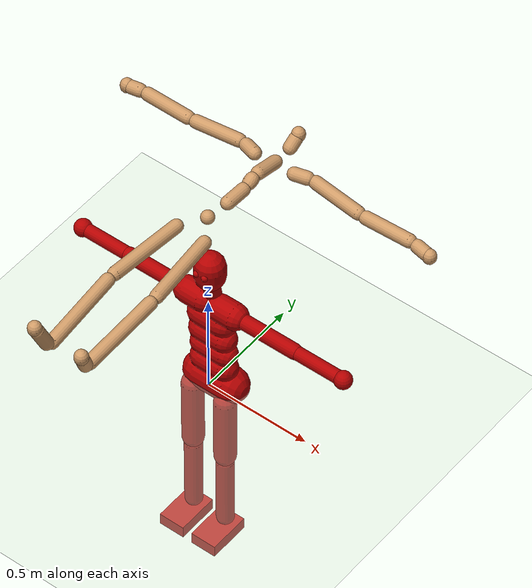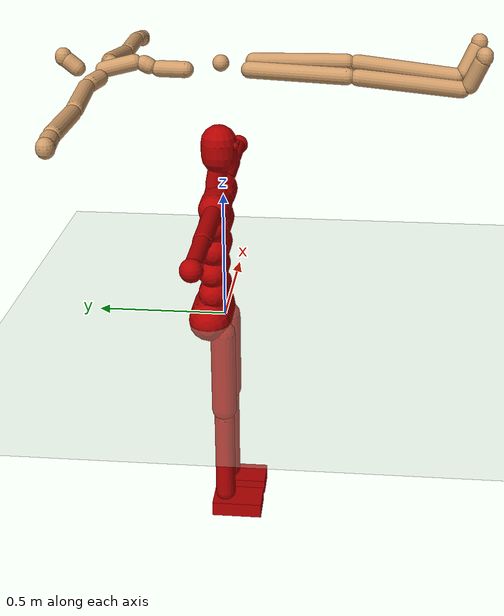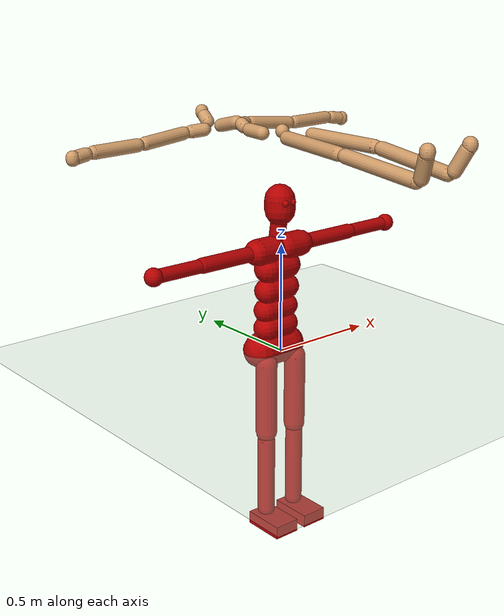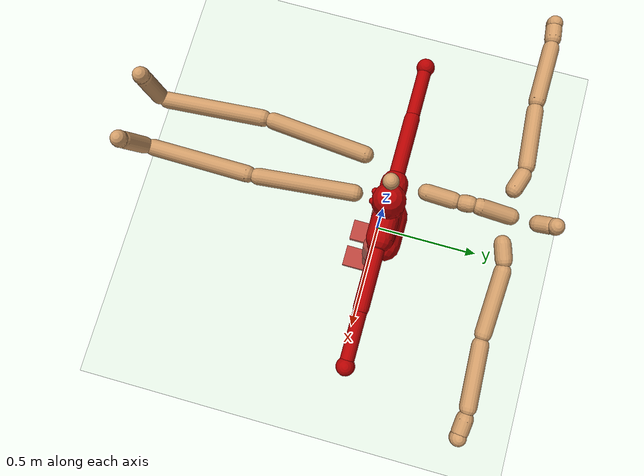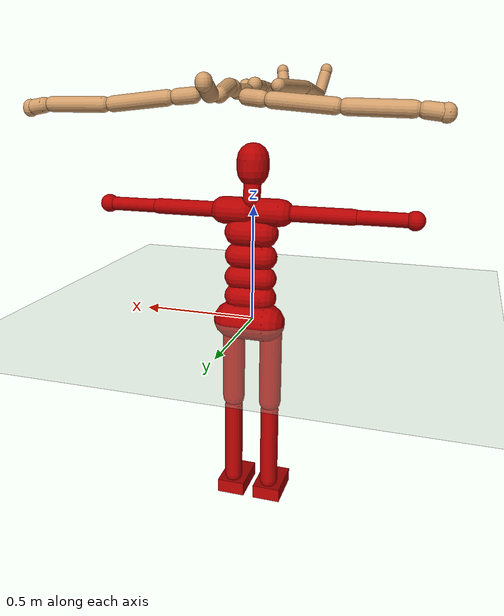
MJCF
<mujoco model="humanoid">
  <compiler angle="degree" inertiafromgeom="true" coordinate="global"/>
  <include file="./common/materials.xml"/>
  <visual>
    <headlight ambient=".4 .4 .4" diffuse=".8 .8 .8" specular="0.1 0.1 0.1"/>
    <map znear=".01"/>
    <quality shadowsize="2048"/>
  </visual>
  <default>
    <joint damping="0.0" armature="0.01" stiffness="0.0" limited="true"/>
    <geom conaffinity="7" condim="1" contype="7" margin="0.001" material="self" rgba="0.8 0.6 .4 1"/>
    <default class="smpl">
        <geom rgba="0.7 0.0 0.0 1"/>
    </default>
  </default>
  <statistic extent="3" center="0 0 1"/>
  <option timestep="0.00222222222"/>
  <asset>
    <texture type="skybox" file="./common/sky1.png" gridsize="3 4" gridlayout=".U..LFRB.D.." width="8192" height="8192"/>
    <texture builtin="flat" height="1278" mark="cross" markrgb="1 1 1" name="texgeom" random="0.01" rgb1=".8 .6 .4" rgb2=".8 .6 .4" type="cube" width="127"/>
  </asset>
  <worldbody>
    <light cutoff="100" diffuse="1 1 1" dir="-0 0 -1.3" directional="true" exponent="1" pos="0 0 1.3" specular=".1 .1 .1"/>
    <geom condim="3" friction="1. .1 .1" material="grid" name="floor" pos="0 0 0" rgba=".8 .9 .8 1" size="100 100 .2" type="plane"/>
    <body name="1_Hips"   pos="0.0000 0.0000 1.0000" user="-0.0002 -0.0243 0.9874">
      <joint name="1_Hips" pos="0.0000 0.0000 1.0000" limited="false" type="free" armature="0" damping="0" stiffness="0"/>
      <geom size="0.0300" type="sphere" pos="0.0000 0.0000 1.0000"/>
      <body name="1_LeftUpLeg" pos="0.0695 -0.0914 0.9932" user="0.1038 -0.4666 0.9887">
        <joint name="1_LeftUpLeg_z" type="hinge" pos="0.0695 -0.0914 0.9932" axis="0.0000 0.0000 1.0000" range="-180.0000 180.0000"/>
        <joint name="1_LeftUpLeg_x" type="hinge" pos="0.0695 -0.0914 0.9932" axis="1.0000 0.0000 0.0000" range="-180.0000 180.0000"/>
        <joint name="1_LeftUpLeg_y" type="hinge" pos="0.0695 -0.0914 0.9932" axis="0.0000 1.0000 0.0000" range="-180.0000 180.0000"/>
        <geom size="0.0300" type="capsule" fromto="0.0713 -0.1113 0.9929 0.1020 -0.4467 0.9889"/>
        <body name="1_LeftLeg" pos="0.1038 -0.4666 0.9887" user="0.0902 -0.8646 0.9450">
          <joint name="1_LeftLeg_z" type="hinge" pos="0.1038 -0.4666 0.9887" axis="0.0000 0.0000 1.0000" range="-180.0000 180.0000"/>
          <joint name="1_LeftLeg_x" type="hinge" pos="0.1038 -0.4666 0.9887" axis="1.0000 0.0000 0.0000" range="-180.0000 180.0000"/>
          <joint name="1_LeftLeg_y" type="hinge" pos="0.1038 -0.4666 0.9887" axis="0.0000 1.0000 0.0000" range="-180.0000 180.0000"/>
          <geom size="0.0300" type="capsule" fromto="0.1031 -0.4865 0.9865 0.0909 -0.8447 0.9472"/>
          <body name="1_LeftFoot" pos="0.0902 -0.8646 0.9450" user="0.1166 -0.9204 1.0643">
            <joint name="1_LeftFoot_z" type="hinge" pos="0.0902 -0.8646 0.9450" axis="0.0000 0.0000 1.0000" range="-180.0000 180.0000"/>
            <joint name="1_LeftFoot_x" type="hinge" pos="0.0902 -0.8646 0.9450" axis="1.0000 0.0000 0.0000" range="-180.0000 180.0000"/>
            <joint name="1_LeftFoot_y" type="hinge" pos="0.0902 -0.8646 0.9450" axis="0.0000 1.0000 0.0000" range="-180.0000 180.0000"/>
            <geom size="0.0300" type="capsule" fromto="0.0941 -0.8729 0.9628 0.1126 -0.9120 1.0465"/>
            <body name="1_LeftToe" pos="0.1166 -0.9204 1.0643" user="0.1166 -0.9204 1.0643">
              <joint name="1_LeftToe_z" type="hinge" pos="0.1166 -0.9204 1.0643" axis="0.0000 0.0000 1.0000" range="-180.0000 180.0000"/>
              <joint name="1_LeftToe_x" type="hinge" pos="0.1166 -0.9204 1.0643" axis="1.0000 0.0000 0.0000" range="-180.0000 180.0000"/>
              <joint name="1_LeftToe_y" type="hinge" pos="0.1166 -0.9204 1.0643" axis="0.0000 1.0000 0.0000" range="-180.0000 180.0000"/>
              <geom size="0.0300" type="capsule" fromto="0.1166 -0.9204 1.0683 0.1166 -0.9204 1.0603"/>
            </body>
          </body>
        </body>
      </body>
      <body name="1_RightUpLeg" pos="-0.0677 -0.0905 0.9957" user="-0.1060 -0.4731 0.9868">
        <joint name="1_RightUpLeg_z" type="hinge" pos="-0.0677 -0.0905 0.9957" axis="0.0000 0.0000 1.0000" range="-180.0000 180.0000"/>
        <joint name="1_RightUpLeg_x" type="hinge" pos="-0.0677 -0.0905 0.9957" axis="1.0000 0.0000 0.0000" range="-180.0000 180.0000"/>
        <joint name="1_RightUpLeg_y" type="hinge" pos="-0.0677 -0.0905 0.9957" axis="0.0000 1.0000 0.0000" range="-180.0000 180.0000"/>
        <geom size="0.0300" type="capsule" fromto="-0.0697 -0.1104 0.9952 -0.1040 -0.4532 0.9873"/>
        <body name="1_RightLeg" pos="-0.1060 -0.4731 0.9868" user="-0.0902 -0.8715 0.9445">
          <joint name="1_RightLeg_z" type="hinge" pos="-0.1060 -0.4731 0.9868" axis="0.0000 0.0000 1.0000" range="-180.0000 180.0000"/>
          <joint name="1_RightLeg_x" type="hinge" pos="-0.1060 -0.4731 0.9868" axis="1.0000 0.0000 0.0000" range="-180.0000 180.0000"/>
          <joint name="1_RightLeg_y" type="hinge" pos="-0.1060 -0.4731 0.9868" axis="0.0000 1.0000 0.0000" range="-180.0000 180.0000"/>
          <geom size="0.0300" type="capsule" fromto="-0.1052 -0.4930 0.9847 -0.0910 -0.8516 0.9466"/>
          <body name="1_RightFoot" pos="-0.0902 -0.8715 0.9445" user="-0.1156 -0.9196 1.0679">
            <joint name="1_RightFoot_z" type="hinge" pos="-0.0902 -0.8715 0.9445" axis="0.0000 0.0000 1.0000" range="-180.0000 180.0000"/>
            <joint name="1_RightFoot_x" type="hinge" pos="-0.0902 -0.8715 0.9445" axis="1.0000 0.0000 0.0000" range="-180.0000 180.0000"/>
            <joint name="1_RightFoot_y" type="hinge" pos="-0.0902 -0.8715 0.9445" axis="0.0000 1.0000 0.0000" range="-180.0000 180.0000"/>
            <geom size="0.0300" type="capsule" fromto="-0.0940 -0.8786 0.9628 -0.1118 -0.9125 1.0496"/>
            <body name="1_RightToe" pos="-0.1156 -0.9196 1.0679" user="-0.1156 -0.9196 1.0679">
              <joint name="1_RightToe_z" type="hinge" pos="-0.1156 -0.9196 1.0679" axis="0.0000 0.0000 1.0000" range="-180.0000 180.0000"/>
              <joint name="1_RightToe_x" type="hinge" pos="-0.1156 -0.9196 1.0679" axis="1.0000 0.0000 0.0000" range="-180.0000 180.0000"/>
              <joint name="1_RightToe_y" type="hinge" pos="-0.1156 -0.9196 1.0679" axis="0.0000 1.0000 0.0000" range="-180.0000 180.0000"/>
              <geom size="0.0300" type="capsule" fromto="-0.1156 -0.9196 1.0719 -0.1156 -0.9196 1.0639"/>
            </body>
          </body>
        </body>
      </body>
      <body name="1_Spine" pos="-0.0025 0.1090 0.9733" user="0.0030 0.2441 0.9744">
        <joint name="1_Spine_z" type="hinge" pos="-0.0025 0.1090 0.9733" axis="0.0000 0.0000 1.0000" range="-180.0000 180.0000"/>
        <joint name="1_Spine_x" type="hinge" pos="-0.0025 0.1090 0.9733" axis="1.0000 0.0000 0.0000" range="-180.0000 180.0000"/>
        <joint name="1_Spine_y" type="hinge" pos="-0.0025 0.1090 0.9733" axis="0.0000 1.0000 0.0000" range="-180.0000 180.0000"/>
        <geom size="0.0300" type="capsule" fromto="-0.0017 0.1289 0.9735 0.0021 0.2242 0.9742"/>
        <body name="1_Spine1" pos="0.0030 0.2441 0.9744" user="0.0044 0.2971 0.9998">
          <joint name="1_Spine1_z" type="hinge" pos="0.0030 0.2441 0.9744" axis="0.0000 0.0000 1.0000" range="-180.0000 180.0000"/>
          <joint name="1_Spine1_x" type="hinge" pos="0.0030 0.2441 0.9744" axis="1.0000 0.0000 0.0000" range="-180.0000 180.0000"/>
          <joint name="1_Spine1_y" type="hinge" pos="0.0030 0.2441 0.9744" axis="0.0000 1.0000 0.0000" range="-180.0000 180.0000"/>
          <geom size="0.0300" type="capsule" fromto="0.0035 0.2622 0.9831 0.0039 0.2790 0.9912"/>
          <body name="1_Spine2" pos="0.0044 0.2971 0.9998" user="0.0025 0.4486 0.9613">
            <joint name="1_Spine2_z" type="hinge" pos="0.0044 0.2971 0.9998" axis="0.0000 0.0000 1.0000" range="-180.0000 180.0000"/>
            <joint name="1_Spine2_x" type="hinge" pos="0.0044 0.2971 0.9998" axis="1.0000 0.0000 0.0000" range="-180.0000 180.0000"/>
            <joint name="1_Spine2_y" type="hinge" pos="0.0044 0.2971 0.9998" axis="0.0000 1.0000 0.0000" range="-180.0000 180.0000"/>
            <geom size="0.0300" type="capsule" fromto="0.0042 0.3164 0.9949 0.0028 0.4292 0.9662"/>
            <body name="1_Neck" pos="0.0016 0.5109 0.9570" user="0.0068 0.5759 1.0083">
              <joint name="1_Neck_z" type="hinge" pos="0.0016 0.5109 0.9570" axis="0.0000 0.0000 1.0000" range="-180.0000 180.0000"/>
              <joint name="1_Neck_x" type="hinge" pos="0.0016 0.5109 0.9570" axis="1.0000 0.0000 0.0000" range="-180.0000 180.0000"/>
              <joint name="1_Neck_y" type="hinge" pos="0.0016 0.5109 0.9570" axis="0.0000 1.0000 0.0000" range="-180.0000 180.0000"/>
              <geom size="0.0300" type="capsule" fromto="0.0029 0.5266 0.9693 0.0055 0.5602 0.9959"/>
              <body name="1_Mouth" pos="0.0068 0.5759 1.0083" user="0.0068 0.5759 1.0083">
                <joint name="1_Mouth_z" type="hinge" pos="0.0068 0.5759 1.0083" axis="0.0000 0.0000 1.0000" range="-180.0000 180.0000"/>
                <joint name="1_Mouth_x" type="hinge" pos="0.0068 0.5759 1.0083" axis="1.0000 0.0000 0.0000" range="-180.0000 180.0000"/>
                <joint name="1_Mouth_y" type="hinge" pos="0.0068 0.5759 1.0083" axis="0.0000 1.0000 0.0000" range="-180.0000 180.0000"/>
                <geom size="0.0300" type="capsule" fromto="0.0068 0.5759 1.0123 0.0068 0.5759 1.0043"/>
              </body>
            </body>
            <body name="1_LeftChest" pos="0.0833 0.4188 0.9657" user="0.1742 0.4493 0.9569">
              <joint name="1_LeftChest_z" type="hinge" pos="0.0833 0.4188 0.9657" axis="0.0000 0.0000 1.0000" range="-180.0000 180.0000"/>
              <joint name="1_LeftChest_x" type="hinge" pos="0.0833 0.4188 0.9657" axis="1.0000 0.0000 0.0000" range="-180.0000 180.0000"/>
              <joint name="1_LeftChest_y" type="hinge" pos="0.0833 0.4188 0.9657" axis="0.0000 1.0000 0.0000" range="-180.0000 180.0000"/>
              <geom size="0.0300" type="capsule" fromto="0.1021 0.4251 0.9639 0.1553 0.4430 0.9587"/>
              <body name="1_LeftShoulder" pos="0.1742 0.4493 0.9569" user="0.4338 0.4365 0.9294">
                <joint name="1_LeftShoulder_z" type="hinge" pos="0.1742 0.4493 0.9569" axis="0.0000 0.0000 1.0000" range="-180.0000 180.0000"/>
                <joint name="1_LeftShoulder_x" type="hinge" pos="0.1742 0.4493 0.9569" axis="1.0000 0.0000 0.0000" range="-180.0000 180.0000"/>
                <joint name="1_LeftShoulder_y" type="hinge" pos="0.1742 0.4493 0.9569" axis="0.0000 1.0000 0.0000" range="-180.0000 180.0000"/>
                <geom size="0.0300" type="capsule" fromto="0.1941 0.4483 0.9548 0.4140 0.4375 0.9315"/>
                <body name="1_LeftArm" pos="0.4338 0.4365 0.9294" user="0.6831 0.4455 0.9282">
                  <joint name="1_LeftArm_z" type="hinge" pos="0.4338 0.4365 0.9294" axis="0.0000 0.0000 1.0000" range="-180.0000 180.0000"/>
                  <joint name="1_LeftArm_x" type="hinge" pos="0.4338 0.4365 0.9294" axis="1.0000 0.0000 0.0000" range="-180.0000 180.0000"/>
                  <joint name="1_LeftArm_y" type="hinge" pos="0.4338 0.4365 0.9294" axis="0.0000 1.0000 0.0000" range="-180.0000 180.0000"/>
                  <geom size="0.0300" type="capsule" fromto="0.4538 0.4372 0.9293 0.6631 0.4448 0.9283"/>
                  <body name="1_LeftWrist" pos="0.6831 0.4455 0.9282" user="0.7671 0.4373 0.9133">
                    <joint name="1_LeftWrist_z" type="hinge" pos="0.6831 0.4455 0.9282" axis="0.0000 0.0000 1.0000" range="-180.0000 180.0000"/>
                    <joint name="1_LeftWrist_x" type="hinge" pos="0.6831 0.4455 0.9282" axis="1.0000 0.0000 0.0000" range="-180.0000 180.0000"/>
                    <joint name="1_LeftWrist_y" type="hinge" pos="0.6831 0.4455 0.9282" axis="0.0000 1.0000 0.0000" range="-180.0000 180.0000"/>
                    <geom size="0.0300" type="capsule" fromto="0.7027 0.4436 0.9247 0.7475 0.4392 0.9168"/>
                    <body name="1_LeftHand" pos="0.7671 0.4373 0.9133" user="0.7671 0.4373 0.9133">
                      <joint name="1_LeftHand_z" type="hinge" pos="0.7671 0.4373 0.9133" axis="0.0000 0.0000 1.0000" range="-180.0000 180.0000"/>
                      <joint name="1_LeftHand_x" type="hinge" pos="0.7671 0.4373 0.9133" axis="1.0000 0.0000 0.0000" range="-180.0000 180.0000"/>
                      <joint name="1_LeftHand_y" type="hinge" pos="0.7671 0.4373 0.9133" axis="0.0000 1.0000 0.0000" range="-180.0000 180.0000"/>
                      <geom size="0.0300" type="capsule" fromto="0.7671 0.4373 0.9173 0.7671 0.4373 0.9093"/>
                    </body>
                  </body>
                </body>
              </body>
            </body>
            <body name="1_RightChest" pos="-0.0773 0.4159 0.9612" user="-0.1734 0.4484 0.9521">
              <joint name="1_RightChest_z" type="hinge" pos="-0.0773 0.4159 0.9612" axis="0.0000 0.0000 1.0000" range="-180.0000 180.0000"/>
              <joint name="1_RightChest_x" type="hinge" pos="-0.0773 0.4159 0.9612" axis="1.0000 0.0000 0.0000" range="-180.0000 180.0000"/>
              <joint name="1_RightChest_y" type="hinge" pos="-0.0773 0.4159 0.9612" axis="0.0000 1.0000 0.0000" range="-180.0000 180.0000"/>
              <geom size="0.0300" type="capsule" fromto="-0.0962 0.4223 0.9594 -0.1545 0.4421 0.9539"/>
              <body name="1_RightShoulder" pos="-0.1734 0.4484 0.9521" user="-0.4271 0.4351 0.9307">
                <joint name="1_RightShoulder_z" type="hinge" pos="-0.1734 0.4484 0.9521" axis="0.0000 0.0000 1.0000" range="-180.0000 180.0000"/>
                <joint name="1_RightShoulder_x" type="hinge" pos="-0.1734 0.4484 0.9521" axis="1.0000 0.0000 0.0000" range="-180.0000 180.0000"/>
                <joint name="1_RightShoulder_y" type="hinge" pos="-0.1734 0.4484 0.9521" axis="0.0000 1.0000 0.0000" range="-180.0000 180.0000"/>
                <geom size="0.0300" type="capsule" fromto="-0.1933 0.4474 0.9504 -0.4072 0.4362 0.9323"/>
                <body name="1_RightArm" pos="-0.4271 0.4351 0.9307" user="-0.6824 0.4429 0.9251">
                  <joint name="1_RightArm_z" type="hinge" pos="-0.4271 0.4351 0.9307" axis="0.0000 0.0000 1.0000" range="-180.0000 180.0000"/>
                  <joint name="1_RightArm_x" type="hinge" pos="-0.4271 0.4351 0.9307" axis="1.0000 0.0000 0.0000" range="-180.0000 180.0000"/>
                  <joint name="1_RightArm_y" type="hinge" pos="-0.4271 0.4351 0.9307" axis="0.0000 1.0000 0.0000" range="-180.0000 180.0000"/>
                  <geom size="0.0300" type="capsule" fromto="-0.4471 0.4357 0.9302 -0.6624 0.4423 0.9255"/>
                  <body name="1_RightWrist" pos="-0.6824 0.4429 0.9251" user="-0.7670 0.4368 0.9148">
                    <joint name="1_RightWrist_z" type="hinge" pos="-0.6824 0.4429 0.9251" axis="0.0000 0.0000 1.0000" range="-180.0000 180.0000"/>
                    <joint name="1_RightWrist_x" type="hinge" pos="-0.6824 0.4429 0.9251" axis="1.0000 0.0000 0.0000" range="-180.0000 180.0000"/>
                    <joint name="1_RightWrist_y" type="hinge" pos="-0.6824 0.4429 0.9251" axis="0.0000 1.0000 0.0000" range="-180.0000 180.0000"/>
                    <geom size="0.0300" type="capsule" fromto="-0.7022 0.4415 0.9227 -0.7472 0.4382 0.9172"/>
                    <body name="1_RightHand" pos="-0.7670 0.4368 0.9148" user="-0.7670 0.4368 0.9148">
                      <joint name="1_RightHand_z" type="hinge" pos="-0.7670 0.4368 0.9148" axis="0.0000 0.0000 1.0000" range="-180.0000 180.0000"/>
                      <joint name="1_RightHand_x" type="hinge" pos="-0.7670 0.4368 0.9148" axis="1.0000 0.0000 0.0000" range="-180.0000 180.0000"/>
                      <joint name="1_RightHand_y" type="hinge" pos="-0.7670 0.4368 0.9148" axis="0.0000 1.0000 0.0000" range="-180.0000 180.0000"/>
                      <geom size="0.0300" type="capsule" fromto="-0.7670 0.4368 0.9188 -0.7670 0.4368 0.9108"/>
                    </body>
                  </body>
                </body>
              </body>
            </body>
          </body>
        </body>
      </body>
    </body>

      <body childclass="smpl" name="Hips" user="0.0000 0.0146 0.0054" pos="0.0000 0.0146 0.0054">
      <geom fromto="-0.0750 0.0506 0.0054 0.0750 0.0506 0.0054" size="0.0820" type="capsule"/>
      <joint armature="0" damping="0" limited="false" name="Hips" pos="0.0000 0.0000 0.0000" stiffness="0" type="free"/>
      <body name="Spine" user="0.0000 0.0591 0.1523" pos="0.0000 0.0146 0.0054">
        <geom fromto="-0.0550 0.0369 0.1109 0.0550 0.0369 0.1109" size="0.0590" type="capsule"/>
        <joint axis="1.0000 0.0000 0.0000" name="Spine_x" pos="0.0000 0.0439 0.0658" range="-30.0000 45.0000" type="hinge"/>
        <joint axis="0.0000 1.0000 0.0000" name="Spine_y" pos="0.0000 0.0439 0.0658" range="-30.0000 30.0000" type="hinge"/>
        <joint axis="0.0000 0.0000 1.0000" name="Spine_z" pos="0.0000 0.0439 0.0658" range="-30.0000 30.0000" type="hinge"/>
        <body name="Spine1" user="0.0000 0.0668 0.2397" pos="0.0000 0.0591 0.1523">
          <geom fromto="-0.0600 0.0370 0.1960 0.0600 0.0370 0.1960" size="0.0540" type="capsule"/>
          <joint axis="1.0000 0.0000 0.0000" name="Spine1_x" pos="0.0000 0.0591 0.1523" range="-30.0000 45.0000" type="hinge"/>
          <joint axis="0.0000 1.0000 0.0000" name="Spine1_y" pos="0.0000 0.0591 0.1523" range="-30.0000 30.0000" type="hinge"/>
          <joint axis="0.0000 0.0000 1.0000" name="Spine1_z" pos="0.0000 0.0591 0.1523" range="-30.0000 30.0000" type="hinge"/>
          <body name="Spine2" user="0.0000 0.0668 0.3275" pos="0.0000 0.0668 0.2397">
            <geom fromto="-0.0575 0.0308 0.2896 0.0575 0.0308 0.2896" size="0.0570" type="capsule"/>
            <joint axis="1.0000 0.0000 0.0000" name="Spine2_x" pos="0.0000 0.0668 0.2397" range="-30.0000 45.0000" type="hinge"/>
            <joint axis="0.0000 1.0000 0.0000" name="Spine2_y" pos="0.0000 0.0668 0.2397" range="-30.0000 30.0000" type="hinge"/>
            <joint axis="0.0000 0.0000 1.0000" name="Spine2_z" pos="0.0000 0.0668 0.2397" range="-30.0000 30.0000" type="hinge"/>
            <body name="Spine3" user="0.0000 0.0240 0.5074" pos="0.0000 0.0668 0.3275">
              <geom fromto="-0.0550 0.0274 0.3914 0.0550 0.0274 0.3914" size="0.0620" type="capsule"/>
              <joint axis="1.0000 0.0000 0.0000" name="Spine3_x" pos="0.0000 0.0668 0.3275" range="-30.0000 45.0000" type="hinge"/>
              <joint axis="0.0000 1.0000 0.0000" name="Spine3_y" pos="0.0000 0.0668 0.3275" range="-30.0000 30.0000" type="hinge"/>
              <joint axis="0.0000 0.0000 1.0000" name="Spine3_z" pos="0.0000 0.0668 0.3275" range="-30.0000 30.0000" type="hinge"/>
              <body name="Neck" user="0.0000 0.0129 0.6768" pos="0.0000 0.0240 0.5074">
                <joint axis="1.0000 0.0000 0.0000" name="Neck_x" pos="0.0000 0.0339 0.5579" range="-30.0000 45.0000" type="hinge"/>
                <joint axis="0.0000 1.0000 0.0000" name="Neck_y" pos="0.0000 0.0339 0.5579" range="-30.0000 30.0000" type="hinge"/>
                <joint axis="0.0000 0.0000 1.0000" name="Neck_z" pos="0.0000 0.0339 0.5579" range="-30.0000 30.0000" type="hinge"/>
                <geom fromto="0.0000 0.0304 0.5336 0.0000 0.0164 0.6131" size="0.0370" type="capsule"/>
                <body name="Head" user="0.0000 0.0129 0.8188" pos="0.0000 0.0129 0.6768">
                  <geom pos="0.0200 -0.0471 0.6968" size="0.0150" type="sphere"/>
                  <geom pos="-0.0200 -0.0471 0.6968" size="0.0150" type="sphere"/>
                  <geom fromto="0.0000 0.0129 0.6543 0.0000 0.0129 0.7013" size="0.0680" type="capsule"/>
                  <joint axis="1.0000 0.0000 0.0000" name="Head_x" pos="0.0000 0.0129 0.6768" range="-30.0000 45.0000" type="hinge"/>
                  <joint axis="0.0000 1.0000 0.0000" name="Head_y" pos="0.0000 0.0129 0.6768" range="-30.0000 30.0000" type="hinge"/>
                  <joint axis="0.0000 0.0000 1.0000" name="Head_z" pos="0.0000 0.0129 0.6768" range="-30.0000 30.0000" type="hinge"/>
                </body>
              </body>
              <body name="RightShoulder" user="-0.1708 0.0191 0.4821" pos="0.0000 0.0240 0.5074">
                <joint axis="1.0000 0.0000 0.0000" name="RightShoulder_x" pos="-0.0286 0.0191 0.4821" range="-20.0000 20.0000" type="hinge"/>
                <joint axis="0.0000 1.0000 0.0000" name="RightShoulder_y" pos="-0.0286 0.0191 0.4821" range="-20.0000 20.0000" type="hinge"/>
                <joint axis="0.0000 0.0000 1.0000" name="RightShoulder_z" pos="-0.0286 0.0191 0.4821" range="-20.0000 20.0000" type="hinge"/>
                <geom fromto="-0.0406 0.0191 0.4821 -0.1228 0.0191 0.4821" size="0.0590" type="capsule"/>
                <body name="RightArm" user="-0.4103 0.0191 0.4821" pos="-0.1708 0.0191 0.4821">
                  <joint axis="1.0000 0.0000 0.0000" name="RightArm_x" pos="-0.1708 0.0191 0.4821" range="-90.0000 90.0000" type="hinge"/>
                  <joint axis="0.0000 1.0000 0.0000" name="RightArm_y" pos="-0.1708 0.0191 0.4821" range="-90.0000 90.0000" type="hinge"/>
                  <joint axis="0.0000 0.0000 1.0000" name="RightArm_z" pos="-0.1708 0.0191 0.4821" range="-60.0000 90.0000" type="hinge"/>
                  <geom fromto="-0.1558 0.0191 0.4821 -0.4253 0.0191 0.4821" size="0.0340" type="capsule"/>
                  <body name="RightForeArm" user="-0.6643 0.0191 0.4821" pos="-0.4103 0.0191 0.4821">
                    <joint axis="0.0000 0.0000 1.0000" name="RightForeArm_z" pos="-0.4103 0.0191 0.4821" range="-10.0000 170.0000" type="hinge"/>
                    <geom fromto="-0.4303 0.0191 0.4821 -0.6443 0.0191 0.4821" size="0.0300" type="capsule"/>
                    <body name="RightHand" user="-0.7282 0.0191 0.4821" pos="-0.6643 0.0191 0.4821">
                      <geom pos="-0.6683 0.0191 0.4821" size="0.0400" type="sphere"/>
                      <joint axis="1.0000 0.0000 0.0000" name="RightHand_x" pos="-0.6643 0.0191 0.4821" range="-90.0000 90.0000" type="hinge"/>
                      <joint axis="0.0000 1.0000 0.0000" name="RightHand_y" pos="-0.6643 0.0191 0.4821" range="-90.0000 90.0000" type="hinge"/>
                      <joint axis="0.0000 0.0000 1.0000" name="RightHand_z" pos="-0.6643 0.0191 0.4821" range="-90.0000 90.0000" type="hinge"/>
                    </body>
                  </body>
                </body>
              </body>
              <body name="LeftShoulder" user="0.1708 0.0191 0.4821" pos="-0.0000 0.0240 0.5074">
                <joint axis="1.0000 0.0000 0.0000" name="LeftShoulder_x" pos="0.0286 0.0191 0.4821" range="-20.0000 20.0000" type="hinge"/>
                <joint axis="0.0000 1.0000 0.0000" name="LeftShoulder_y" pos="0.0286 0.0191 0.4821" range="-20.0000 20.0000" type="hinge"/>
                <joint axis="0.0000 0.0000 1.0000" name="LeftShoulder_z" pos="0.0286 0.0191 0.4821" range="-20.0000 20.0000" type="hinge"/>
                <geom fromto="0.0406 0.0191 0.4821 0.1228 0.0191 0.4821" size="0.0590" type="capsule"/>
                <body name="LeftArm" user="0.4103 0.0191 0.4821" pos="0.1708 0.0191 0.4821">
                  <joint axis="1.0000 0.0000 0.0000" name="LeftArm_x" pos="0.1708 0.0191 0.4821" range="-90.0000 90.0000" type="hinge"/>
                  <joint axis="0.0000 1.0000 0.0000" name="LeftArm_y" pos="0.1708 0.0191 0.4821" range="-90.0000 90.0000" type="hinge"/>
                  <joint axis="0.0000 0.0000 1.0000" name="LeftArm_z" pos="0.1708 0.0191 0.4821" range="-90.0000 60.0000" type="hinge"/>
                  <geom fromto="0.1558 0.0191 0.4821 0.4253 0.0191 0.4821" size="0.0340" type="capsule"/>
                  <body name="LeftForeArm" user="0.6643 0.0191 0.4821" pos="0.4103 0.0191 0.4821">
                    <joint axis="0.0000 0.0000 1.0000" name="LeftForeArm_z" pos="0.4103 0.0191 0.4821" range="-170.0000 10.0000" type="hinge"/>
                    <geom fromto="0.4303 0.0191 0.4821 0.6443 0.0191 0.4821" size="0.0300" type="capsule"/>
                    <body name="LeftHand" user="0.7282 0.0191 0.4821" pos="0.6643 0.0191 0.4821">
                      <geom pos="0.6683 0.0191 0.4821" size="0.0400" type="sphere"/>
                      <joint axis="1.0000 0.0000 0.0000" name="LeftHand_x" pos="0.6643 0.0191 0.4821" range="-90.0000 90.0000" type="hinge"/>
                      <joint axis="0.0000 1.0000 0.0000" name="LeftHand_y" pos="0.6643 0.0191 0.4821" range="-90.0000 90.0000" type="hinge"/>
                      <joint axis="0.0000 0.0000 1.0000" name="LeftHand_z" pos="0.6643 0.0191 0.4821" range="-90.0000 90.0000" type="hinge"/>
                    </body>
                  </body>
                </body>
              </body>
            </body>
          </body>
        </body>
      </body>
      <body name="RightUpLeg" user="-0.0849 0.0000 -0.4027" pos="0.0000 0.0146 0.0054">
        <joint axis="1.0000 0.0000 0.0000" name="RightUpLeg_x" pos="-0.0849 0.0000 -0.0248" range="-170.0000 20.0000" type="hinge"/>
        <joint axis="0.0000 1.0000 0.0000" name="RightUpLeg_y" pos="-0.0849 0.0000 -0.0248" range="-40.0000 90.0000" type="hinge"/>
        <joint axis="0.0000 0.0000 1.0000" name="RightUpLeg_z" pos="-0.0849 0.0000 -0.0248" range="-70.0000 70.0000" type="hinge"/>
        <geom fromto="-0.0849 0.0000 -0.0448 -0.0849 0.0000 -0.3827" size="0.0490" type="capsule"/>
        <body name="RightLeg" user="-0.0849 0.0000 -0.7988" pos="-0.0849 0.0000 -0.4027">
          <joint axis="1.0000 0.0000 0.0000" name="RightLeg_x" pos="-0.0849 0.0000 -0.4027" range="0.0000 170.0000" type="hinge"/>
          <geom contype="1" conaffinity="1" fromto="-0.0849 0.0000 -0.4227 -0.0849 0.0000 -0.7788" size="0.0400" type="capsule"/>
          <body name="RightFoot" user="-0.0849 -0.1308 -0.8464" pos="-0.0849 0.0000 -0.7988">
            <geom contype="1" conaffinity="1" pos="-0.0849 -0.0514 -0.8306" size="0.0620 0.1000 0.0300" quat="1.0000 -0.0000 -0.0000 -0.0000" type="box"/>
            <joint axis="1.0000 0.0000 0.0000" name="RightFoot_x" pos="-0.0849 0.0000 -0.7988" range="-90.0000 90.0000" type="hinge"/>
            <joint axis="0.0000 1.0000 0.0000" name="RightFoot_y" pos="-0.0849 0.0000 -0.7988" range="-60.0000 60.0000" type="hinge"/>
            <joint axis="0.0000 0.0000 1.0000" name="RightFoot_z" pos="-0.0849 0.0000 -0.7988" range="-90.0000 90.0000" type="hinge"/>
          </body>
        </body>
      </body>
      <body name="LeftUpLeg" user="0.0849 0.0000 -0.4027" pos="-0.0000 0.0146 0.0054">
        <joint axis="1.0000 0.0000 0.0000" name="LeftUpLeg_x" pos="0.0849 0.0000 -0.0248" range="-170.0000 20.0000" type="hinge"/>
        <joint axis="0.0000 1.0000 0.0000" name="LeftUpLeg_y" pos="0.0849 0.0000 -0.0248" range="-90.0000 40.0000" type="hinge"/>
        <joint axis="0.0000 0.0000 1.0000" name="LeftUpLeg_z" pos="0.0849 0.0000 -0.0248" range="-70.0000 70.0000" type="hinge"/>
        <geom fromto="0.0849 0.0000 -0.0448 0.0849 0.0000 -0.3827" size="0.0490" type="capsule"/>
        <body name="LeftLeg" user="0.0849 0.0000 -0.7988" pos="0.0849 0.0000 -0.4027">
          <joint axis="1.0000 0.0000 0.0000" name="LeftLeg_x" pos="0.0849 0.0000 -0.4027" range="0.0000 170.0000" type="hinge"/>
          <geom contype="2" conaffinity="2" fromto="0.0849 0.0000 -0.4227 0.0849 0.0000 -0.7788" size="0.0400" type="capsule"/>
          <body name="LeftFoot" user="0.0849 -0.1308 -0.8464" pos="0.0849 0.0000 -0.7988">
            <geom contype="2" conaffinity="2" pos="0.0849 -0.0514 -0.8306" size="0.0620 0.1000 0.0300" quat="1.0000 -0.0000 -0.0000 0.0000" type="box"/>
            <joint axis="1.0000 0.0000 0.0000" name="LeftFoot_x" pos="0.0849 0.0000 -0.7988" range="-90.0000 90.0000" type="hinge"/>
            <joint axis="0.0000 1.0000 0.0000" name="LeftFoot_y" pos="0.0849 0.0000 -0.7988" range="-60.0000 60.0000" type="hinge"/>
            <joint axis="0.0000 0.0000 1.0000" name="LeftFoot_z" pos="0.0849 0.0000 -0.7988" range="-90.0000 90.0000" type="hinge"/>
          </body>
        </body>
      </body>
    </body>

  </worldbody>
  <actuator>
    <motor name="1_LeftUpLeg_z" joint="1_LeftUpLeg_z" gear="1"/>
    <motor name="1_LeftUpLeg_x" joint="1_LeftUpLeg_x" gear="1"/>
    <motor name="1_LeftUpLeg_y" joint="1_LeftUpLeg_y" gear="1"/>
    <motor name="1_LeftLeg_z" joint="1_LeftLeg_z" gear="1"/>
    <motor name="1_LeftLeg_x" joint="1_LeftLeg_x" gear="1"/>
    <motor name="1_LeftLeg_y" joint="1_LeftLeg_y" gear="1"/>
    <motor name="1_LeftFoot_z" joint="1_LeftFoot_z" gear="1"/>
    <motor name="1_LeftFoot_x" joint="1_LeftFoot_x" gear="1"/>
    <motor name="1_LeftFoot_y" joint="1_LeftFoot_y" gear="1"/>
    <motor name="1_LeftToe_z" joint="1_LeftToe_z" gear="1"/>
    <motor name="1_LeftToe_x" joint="1_LeftToe_x" gear="1"/>
    <motor name="1_LeftToe_y" joint="1_LeftToe_y" gear="1"/>
    <motor name="1_RightUpLeg_z" joint="1_RightUpLeg_z" gear="1"/>
    <motor name="1_RightUpLeg_x" joint="1_RightUpLeg_x" gear="1"/>
    <motor name="1_RightUpLeg_y" joint="1_RightUpLeg_y" gear="1"/>
    <motor name="1_RightLeg_z" joint="1_RightLeg_z" gear="1"/>
    <motor name="1_RightLeg_x" joint="1_RightLeg_x" gear="1"/>
    <motor name="1_RightLeg_y" joint="1_RightLeg_y" gear="1"/>
    <motor name="1_RightFoot_z" joint="1_RightFoot_z" gear="1"/>
    <motor name="1_RightFoot_x" joint="1_RightFoot_x" gear="1"/>
    <motor name="1_RightFoot_y" joint="1_RightFoot_y" gear="1"/>
    <motor name="1_RightToe_z" joint="1_RightToe_z" gear="1"/>
    <motor name="1_RightToe_x" joint="1_RightToe_x" gear="1"/>
    <motor name="1_RightToe_y" joint="1_RightToe_y" gear="1"/>
    <motor name="1_Spine_z" joint="1_Spine_z" gear="1"/>
    <motor name="1_Spine_x" joint="1_Spine_x" gear="1"/>
    <motor name="1_Spine_y" joint="1_Spine_y" gear="1"/>
    <motor name="1_Spine1_z" joint="1_Spine1_z" gear="1"/>
    <motor name="1_Spine1_x" joint="1_Spine1_x" gear="1"/>
    <motor name="1_Spine1_y" joint="1_Spine1_y" gear="1"/>
    <motor name="1_Spine2_z" joint="1_Spine2_z" gear="1"/>
    <motor name="1_Spine2_x" joint="1_Spine2_x" gear="1"/>
    <motor name="1_Spine2_y" joint="1_Spine2_y" gear="1"/>
    <motor name="1_Neck_z" joint="1_Neck_z" gear="1"/>
    <motor name="1_Neck_x" joint="1_Neck_x" gear="1"/>
    <motor name="1_Neck_y" joint="1_Neck_y" gear="1"/>
    <motor name="1_Mouth_z" joint="1_Mouth_z" gear="1"/>
    <motor name="1_Mouth_x" joint="1_Mouth_x" gear="1"/>
    <motor name="1_Mouth_y" joint="1_Mouth_y" gear="1"/>
    <motor name="1_LeftChest_z" joint="1_LeftChest_z" gear="1"/>
    <motor name="1_LeftChest_x" joint="1_LeftChest_x" gear="1"/>
    <motor name="1_LeftChest_y" joint="1_LeftChest_y" gear="1"/>
    <motor name="1_LeftShoulder_z" joint="1_LeftShoulder_z" gear="1"/>
    <motor name="1_LeftShoulder_x" joint="1_LeftShoulder_x" gear="1"/>
    <motor name="1_LeftShoulder_y" joint="1_LeftShoulder_y" gear="1"/>
    <motor name="1_LeftArm_z" joint="1_LeftArm_z" gear="1"/>
    <motor name="1_LeftArm_x" joint="1_LeftArm_x" gear="1"/>
    <motor name="1_LeftArm_y" joint="1_LeftArm_y" gear="1"/>
    <motor name="1_LeftWrist_z" joint="1_LeftWrist_z" gear="1"/>
    <motor name="1_LeftWrist_x" joint="1_LeftWrist_x" gear="1"/>
    <motor name="1_LeftWrist_y" joint="1_LeftWrist_y" gear="1"/>
    <motor name="1_LeftHand_z" joint="1_LeftHand_z" gear="1"/>
    <motor name="1_LeftHand_x" joint="1_LeftHand_x" gear="1"/>
    <motor name="1_LeftHand_y" joint="1_LeftHand_y" gear="1"/>
    <motor name="1_RightChest_z" joint="1_RightChest_z" gear="1"/>
    <motor name="1_RightChest_x" joint="1_RightChest_x" gear="1"/>
    <motor name="1_RightChest_y" joint="1_RightChest_y" gear="1"/>
    <motor name="1_RightShoulder_z" joint="1_RightShoulder_z" gear="1"/>
    <motor name="1_RightShoulder_x" joint="1_RightShoulder_x" gear="1"/>
    <motor name="1_RightShoulder_y" joint="1_RightShoulder_y" gear="1"/>
    <motor name="1_RightArm_z" joint="1_RightArm_z" gear="1"/>
    <motor name="1_RightArm_x" joint="1_RightArm_x" gear="1"/>
    <motor name="1_RightArm_y" joint="1_RightArm_y" gear="1"/>
    <motor name="1_RightWrist_z" joint="1_RightWrist_z" gear="1"/>
    <motor name="1_RightWrist_x" joint="1_RightWrist_x" gear="1"/>
    <motor name="1_RightWrist_y" joint="1_RightWrist_y" gear="1"/>
    <motor name="1_RightHand_z" joint="1_RightHand_z" gear="1"/>
    <motor name="1_RightHand_x" joint="1_RightHand_x" gear="1"/>
    <motor name="1_RightHand_y" joint="1_RightHand_y" gear="1"/>
  </actuator>
</mujoco>

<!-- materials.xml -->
<!--
Common textures, colors and materials to be used throughout this suite. Some
materials such as xxx_highlight are activated on occurence of certain events,
for example receiving a positive reward.
-->
<mujoco>
  <asset>
    <texture name="grid" type="2d" builtin="checker" rgb1=".1 .2 .3" rgb2=".2 .3 .4" width="300" height="300" mark="edge" markrgb=".2 .3 .4"/>
    <material name="grid" texture="grid" texrepeat="1 1" texuniform="true" reflectance=".2"/>
    <texture builtin="checker" height="100" name="texplane" rgb1="0 0 0" rgb2=".8 .8 .8" type="2d" width="100"/>
    <texture name="grass" file="./common/grass.png" type="2d"/>

    <texture name="grid_new" type="2d" builtin="checker" rgb1=".1 .3 .2" rgb2=".2 .4 .3" width="1000" height="1000" mark="none" markrgb=".8 .6 .4"/>
    <material name="grid_new" texture="grid_new" texrepeat="0.2 0.2" texuniform="true" reflectance=".2"/>
    <material name="MatPlane" reflectance="0.5" shininess="1" specular="1" texrepeat="60 60" texture="texplane"/>
    <material name="GrassPlane" reflectance="0.0" shininess="1" specular="1" texrepeat="400 400" texture="grass"/>
    <material name="self" rgba=".7 .5 .3 1"/>
    <material name="self_default" rgba=".7 .5 .3 1"/>
    <material name="self_highlight" rgba="0 .5 .3 1"/>
    <material name="effector" rgba=".7 .4 .2 1"/>
    <material name="effector_default" rgba=".7 .4 .2 1"/>
    <material name="effector_highlight" rgba="0 .5 .3 1"/>
    <material name="decoration" rgba=".3 .5 .7 1"/>
    <material name="eye" rgba="0 .2 1 1"/>
    <material name="target" rgba=".6 .3 .3 1"/>
    <material name="target_default" rgba=".6 .3 .3 1"/>
    <material name="target_highlight" rgba=".6 .3 .3 .4"/>
    <material name="expert" rgba=".6 .3 .3 .4"/>
  </asset>
</mujoco>
